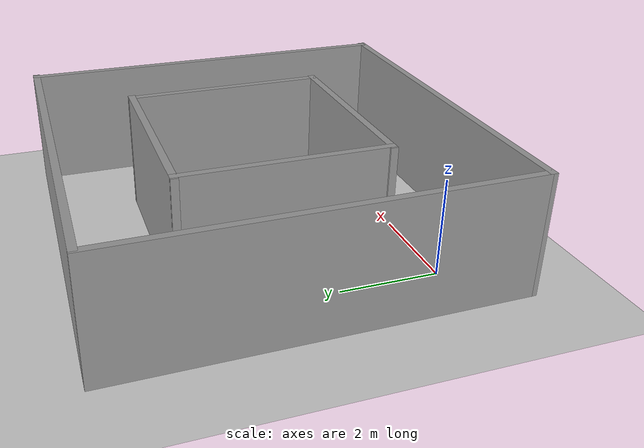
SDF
<sdf version="1.6">
 <world name="default">
  <light name="sun" type="directional">
   <pose>0 0 10 0 -0 0</pose>
   <diffuse>0.8 0.8 0.8 1</diffuse>
   <specular>0.2 0.2 0.2 1</specular>
   <attenuation>
    <range>1000</range>
    <constant>0.9</constant>
    <linear>0.01</linear>
    <quadratic>0.001</quadratic>
   </attenuation>
   <direction>-0.5 0.1 -0.9</direction>
  </light>
  <model name="ground_plane">
   <static>1</static>
   <link name="link">
    <collision name="collision">
     <geometry><plane><normal>0 0 1</normal><size>100 100</size></plane></geometry>
     <surface><friction><ode><mu>100</mu><mu2>50</mu2></ode></friction></surface>
    </collision>
    <visual name="visual">
     <cast_shadows>0</cast_shadows>
     <geometry><plane><normal>0 0 1</normal><size>100 100</size></plane></geometry>
     <material>
      <script><uri>file://media/materials/scripts/gazebo.material</uri><name>Gazebo/Grey</name></script>
     </material>
    </visual>
   </link>
  </model>
  <gravity>0 0 -9.8</gravity>
  <magnetic_field>6e-06 2.3e-05 -4.2e-05</magnetic_field>
  <atmosphere type="adiabatic"/>
  <physics name="default_physics" default="0" type="ode">
   <max_step_size>0.001</max_step_size>
   <real_time_factor>1</real_time_factor>
   <real_time_update_rate>1000</real_time_update_rate>
  </physics>
  <scene><ambient>0.4 0.4 0.4 1</ambient><background>0.7 0.7 0.7 1</background><shadows>1</shadows></scene>
  <audio><device>default</device></audio>
  <spherical_coordinates>
   <surface_model>EARTH_WGS84</surface_model>
   <latitude_deg>0</latitude_deg>
   <longitude_deg>0</longitude_deg>
   <elevation>0</elevation>
   <heading_deg>0</heading_deg>
  </spherical_coordinates>
  <model name="run3_track">
   <pose>2.7459 2.69315 0 0 -0 0</pose>
   <link name="Wall_10">
    <collision name="Wall_10_Collision">
     <geometry><box><size>7.94353 0.15 2.5</size></box></geometry>
     <pose>0 0 1.25 0 -0 0</pose>
    </collision>
    <visual name="Wall_10_Visual">
     <pose>0 0 1.25 0 -0 0</pose>
     <geometry><box><size>7.94353 0.15 2.5</size></box></geometry>
     <material>
      <script><uri>file://media/materials/scripts/gazebo.material</uri><name>Gazebo/Grey</name></script>
      <ambient>1 1 1 1</ambient>
     </material>
     <meta><layer>0</layer></meta>
    </visual>
    <pose>0.020504 -4.02366 0 0 -0 -0.005263</pose>
   </link>
   <link name="Wall_11">
    <collision name="Wall_11_Collision">
     <geometry><box><size>8.1564 0.15 2.5</size></box></geometry>
     <pose>0 0 1.25 0 -0 0</pose>
    </collision>
    <visual name="Wall_11_Visual">
     <pose>0 0 1.25 0 -0 0</pose>
     <geometry><box><size>8.1564 0.15 2.5</size></box></geometry>
     <material>
      <script><uri>file://media/materials/scripts/gazebo.material</uri><name>Gazebo/Grey</name></script>
      <ambient>1 1 1 1</ambient>
     </material>
     <meta><layer>0</layer></meta>
    </visual>
    <pose>3.8762 0 0 0 -0 1.5708</pose>
   </link>
   <link name="Wall_12">
    <collision name="Wall_12_Collision">
     <geometry><box><size>7.94353 0.15 2.5</size></box></geometry>
     <pose>0 0 1.25 0 -0 0</pose>
    </collision>
    <visual name="Wall_12_Visual">
     <pose>0 0 1.25 0 -0 0</pose>
     <geometry><box><size>7.94353 0.15 2.5</size></box></geometry>
     <material>
      <script><uri>file://media/materials/scripts/gazebo.material</uri><name>Gazebo/Grey</name></script>
      <ambient>1 1 1 1</ambient>
     </material>
     <meta><layer>0</layer></meta>
    </visual>
    <pose>0.020504 4.02366 0 0 -0 3.13633</pose>
   </link>
   <link name="Wall_13">
    <collision name="Wall_13_Collision">
     <geometry><box><size>8.1563 0.15 2.5</size></box></geometry>
     <pose>0 0 1.25 0 -0 0</pose>
    </collision>
    <visual name="Wall_13_Visual">
     <pose>0 0 1.25 0 -0 0</pose>
     <geometry><box><size>8.1563 0.15 2.5</size></box></geometry>
     <material>
      <script><uri>file://media/materials/scripts/gazebo.material</uri><name>Gazebo/Grey</name></script>
      <ambient>1 1 1 1</ambient>
     </material>
     <meta><layer>0</layer></meta>
    </visual>
    <pose>-3.89672 0.041019 0 0 -0 -1.56567</pose>
   </link>
   <link name="Wall_4">
    <collision name="Wall_4_Collision">
     <geometry><box><size>4.23636 0.15 2.5</size></box></geometry>
     <pose>0 0 1.25 0 -0 0</pose>
    </collision>
    <visual name="Wall_4_Visual">
     <pose>0 0 1.25 0 -0 0</pose>
     <geometry><box><size>4.23636 0.15 2.5</size></box></geometry>
     <material>
      <script><uri>file://media/materials/scripts/gazebo.material</uri><name>Gazebo/Grey</name></script>
      <ambient>1 1 1 1</ambient>
     </material>
     <meta><layer>0</layer></meta>
    </visual>
    <pose>1.90909 0.138123 0 0 -0 1.57953</pose>
   </link>
   <link name="Wall_5">
    <collision name="Wall_5_Collision">
     <geometry><box><size>4.15475 0.15 2.5</size></box></geometry>
     <pose>0 0 1.25 0 -0 0</pose>
    </collision>
    <visual name="Wall_5_Visual">
     <pose>0 0 1.25 0 -0 0</pose>
     <geometry><box><size>4.15475 0.15 2.5</size></box></geometry>
     <material>
      <script><uri>file://media/materials/scripts/gazebo.material</uri><name>Gazebo/Grey</name></script>
      <ambient>1 1 1 1</ambient>
     </material>
     <meta><layer>0</layer></meta>
    </visual>
    <pose>-0.070099 2.17855 0 0 -0 -3.14026</pose>
   </link>
   <link name="Wall_6">
    <collision name="Wall_6_Collision">
     <geometry><box><size>4.2362 0.15 2.5</size></box></geometry>
     <pose>0 0 1.25 0 -0 0</pose>
    </collision>
    <visual name="Wall_6_Visual">
     <pose>0 0 1.25 0 -0 0</pose>
     <geometry><box><size>4.2362 0.15 2.5</size></box></geometry>
     <material>
      <script><uri>file://media/materials/scripts/gazebo.material</uri><name>Gazebo/Grey</name></script>
      <ambient>1 1 1 1</ambient>
     </material>
     <meta><layer>0</layer></meta>
    </visual>
    <pose>-2.03146 0.132773 0 0 -0 -1.5708</pose>
   </link>
   <link name="Wall_8">
    <collision name="Wall_8_Collision">
     <geometry><box><size>4.19042 0.15 2.5</size></box></geometry>
     <pose>0 0 1.25 0 -0 0</pose>
    </collision>
    <visual name="Wall_8_Visual">
     <pose>0 0 1.25 0 -0 0</pose>
     <geometry><box><size>4.19042 0.15 2.5</size></box></geometry>
     <material>
      <script><uri>file://media/materials/scripts/gazebo.material</uri><name>Gazebo/Grey</name></script>
      <ambient>1 1 1 1</ambient>
     </material>
     <meta><layer>0</layer></meta>
    </visual>
    <pose>-0.052265 -1.90765 0 0 -0 0.001324</pose>
   </link>
   <static>1</static>
  </model>
 </world>
</sdf>
